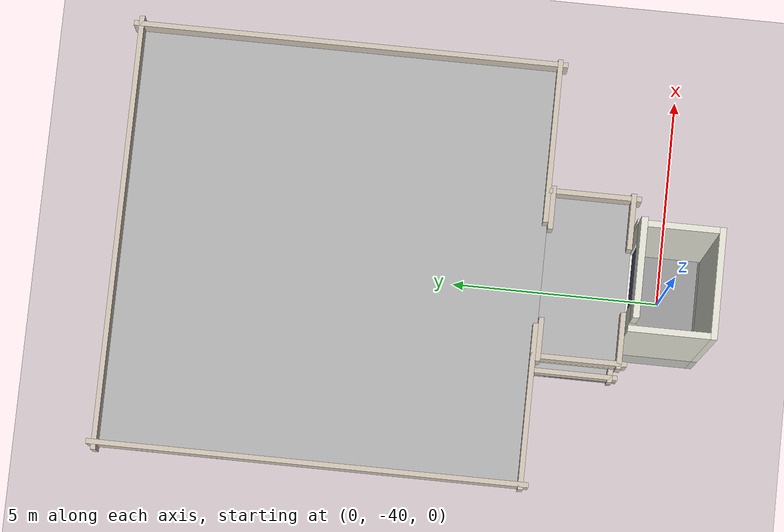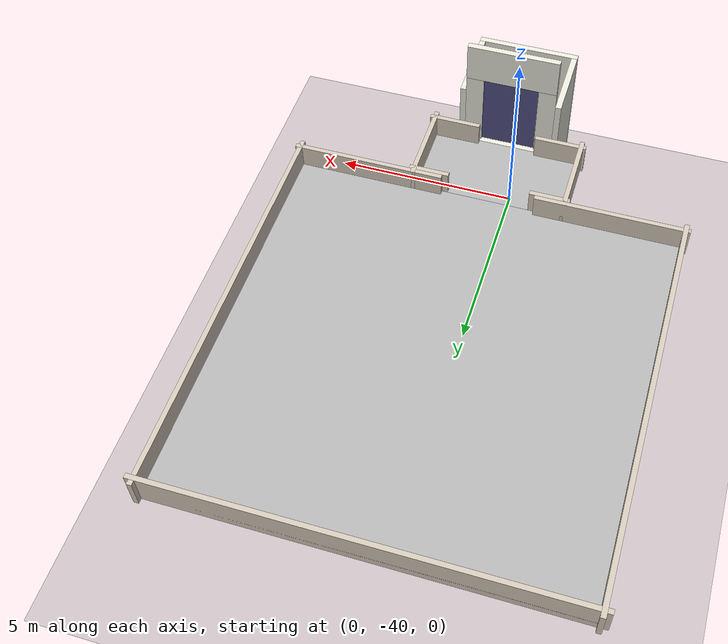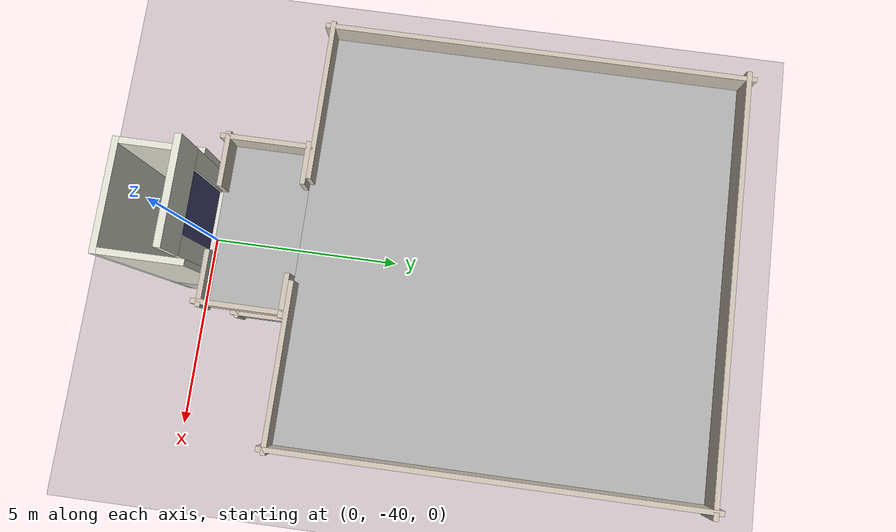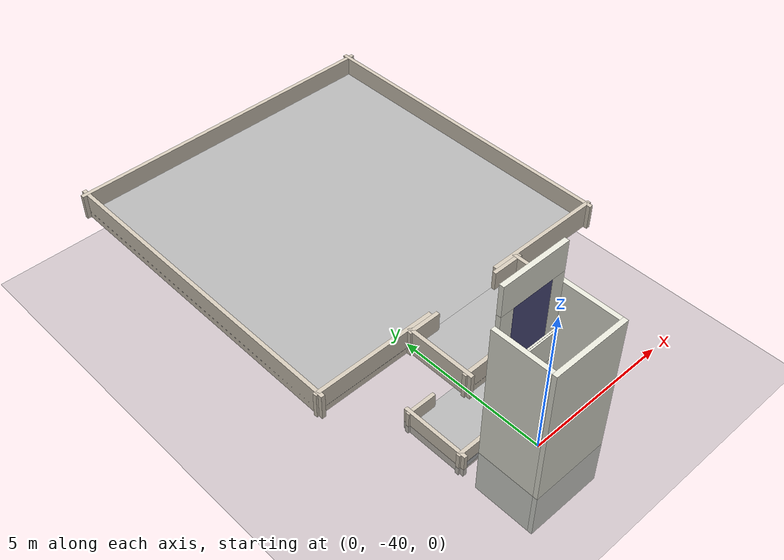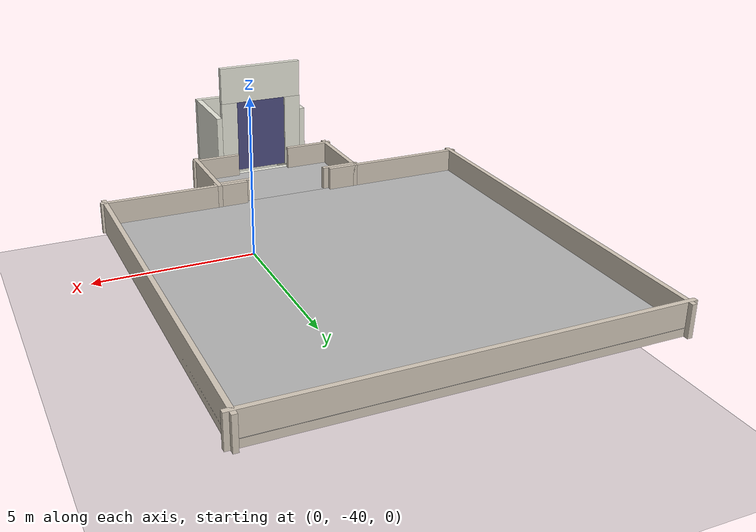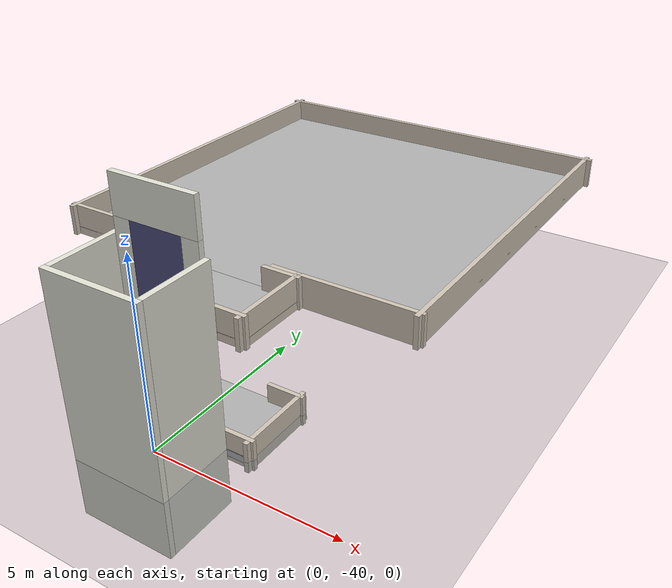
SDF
<sdf version="1.10">
 <world name="world_demo">
  <model name="elevator">
   <pose>0 -40 0 0 0 1.5699999999999998</pose>
   <link name="structure">
    <kinematic>true</kinematic>
    <inertial>
     <mass>500</mass>
     <inertia><ixx>5000</ixx><iyy>5000</iyy><izz>500</izz><ixy>0</ixy><ixz>0</ixz><iyz>0</iyz></inertia>
    </inertial>
    <visual name="rear_wall_v">
     <pose>-1.0249999999999999 0 1.6000000000000001 0 0 0</pose>
     <geometry><box><size>0.14999999999999999 2.6000000000000001 6.4000000000000004</size></box></geometry>
     <material>
      <ambient>0.899999976 0.899999976 0.850000024 1</ambient>
      <diffuse>0.899999976 0.899999976 0.850000024 1</diffuse>
     </material>
    </visual>
    <collision name="rear_wall_c">
     <pose>-1.0249999999999999 0 1.6000000000000001 0 0 0</pose>
     <geometry><box><size>0.14999999999999999 2.6000000000000001 6.4000000000000004</size></box></geometry>
    </collision>
    <visual name="right_wall_v">
     <pose>0 -1.2250000000000001 1.6000000000000001 0 0 0</pose>
     <geometry><box><size>1.8999999999999999 0.14999999999999999 6.4000000000000004</size></box></geometry>
     <material>
      <ambient>0.899999976 0.899999976 0.850000024 1</ambient>
      <diffuse>0.899999976 0.899999976 0.850000024 1</diffuse>
     </material>
    </visual>
    <collision name="right_wall_c">
     <pose>0 -1.2250000000000001 1.6000000000000001 0 0 0</pose>
     <geometry><box><size>1.8999999999999999 0.14999999999999999 6.4000000000000004</size></box></geometry>
    </collision>
    <visual name="left_wall_v">
     <pose>0 1.2250000000000001 1.6000000000000001 0 0 0</pose>
     <geometry><box><size>1.8999999999999999 0.14999999999999999 6.4000000000000004</size></box></geometry>
     <material>
      <ambient>0.899999976 0.899999976 0.850000024 1</ambient>
      <diffuse>0.899999976 0.899999976 0.850000024 1</diffuse>
     </material>
    </visual>
    <collision name="left_wall_c">
     <pose>0 1.2250000000000001 1.6000000000000001 0 0 0</pose>
     <geometry><box><size>1.8999999999999999 0.14999999999999999 6.4000000000000004</size></box></geometry>
    </collision>
    <visual name="front_top_0_v">
     <pose>0.875 0 2.5 0 0 0</pose>
     <geometry><box><size>0.14999999999999999 2.2999999999999998 1</size></box></geometry>
     <material>
      <ambient>0.899999976 0.899999976 0.850000024 1</ambient>
      <diffuse>0.899999976 0.899999976 0.850000024 1</diffuse>
     </material>
    </visual>
    <collision name="front_top_0_c">
     <pose>0.875 0 2.5 0 0 0</pose>
     <geometry><box><size>0.14999999999999999 2.2999999999999998 1</size></box></geometry>
    </collision>
    <visual name="front_right_0_v">
     <pose>0.875 -0.92500000000000004 1 0 0 0</pose>
     <geometry><box><size>0.14999999999999999 0.45000000000000001 2</size></box></geometry>
     <material>
      <ambient>0.899999976 0.899999976 0.850000024 1</ambient>
      <diffuse>0.899999976 0.899999976 0.850000024 1</diffuse>
     </material>
    </visual>
    <collision name="front_right_0_c">
     <pose>0.875 -0.92500000000000004 1 0 0 0</pose>
     <geometry><box><size>0.14999999999999999 0.45000000000000001 2</size></box></geometry>
    </collision>
    <visual name="front_left_0_v">
     <pose>0.875 0.92500000000000004 1 0 0 0</pose>
     <geometry><box><size>0.14999999999999999 0.45000000000000001 2</size></box></geometry>
     <material>
      <ambient>0.899999976 0.899999976 0.850000024 1</ambient>
      <diffuse>0.899999976 0.899999976 0.850000024 1</diffuse>
     </material>
    </visual>
    <collision name="front_left_0_c">
     <pose>0.875 0.92500000000000004 1 0 0 0</pose>
     <geometry><box><size>0.14999999999999999 0.45000000000000001 2</size></box></geometry>
    </collision>
    <visual name="front_bottom_0_v">
     <pose>0.875 0 -0.01 0 0 0</pose>
     <geometry><box><size>0.14999999999999999 2.2999999999999998 0.01</size></box></geometry>
     <material>
      <ambient>0.899999976 0.899999976 0.850000024 1</ambient>
      <diffuse>0.899999976 0.899999976 0.850000024 1</diffuse>
     </material>
    </visual>
    <collision name="front_bottom_0_c">
     <pose>0.875 0 -0.01 0 0 0</pose>
     <geometry><box><size>0.14999999999999999 2.2999999999999998 0.01</size></box></geometry>
    </collision>
    <visual name="front_top_1_v">
     <pose>0.875 0 5.7000000000000002 0 0 0</pose>
     <geometry><box><size>0.14999999999999999 2.2999999999999998 1</size></box></geometry>
     <material>
      <ambient>0.899999976 0.899999976 0.850000024 1</ambient>
      <diffuse>0.899999976 0.899999976 0.850000024 1</diffuse>
     </material>
    </visual>
    <collision name="front_top_1_c">
     <pose>0.875 0 5.7000000000000002 0 0 0</pose>
     <geometry><box><size>0.14999999999999999 2.2999999999999998 1</size></box></geometry>
    </collision>
    <visual name="front_right_1_v">
     <pose>0.875 -0.92500000000000004 4.2000000000000002 0 0 0</pose>
     <geometry><box><size>0.14999999999999999 0.45000000000000001 2</size></box></geometry>
     <material>
      <ambient>0.899999976 0.899999976 0.850000024 1</ambient>
      <diffuse>0.899999976 0.899999976 0.850000024 1</diffuse>
     </material>
    </visual>
    <collision name="front_right_1_c">
     <pose>0.875 -0.92500000000000004 4.2000000000000002 0 0 0</pose>
     <geometry><box><size>0.14999999999999999 0.45000000000000001 2</size></box></geometry>
    </collision>
    <visual name="front_left_1_v">
     <pose>0.875 0.92500000000000004 4.2000000000000002 0 0 0</pose>
     <geometry><box><size>0.14999999999999999 0.45000000000000001 2</size></box></geometry>
     <material>
      <ambient>0.899999976 0.899999976 0.850000024 1</ambient>
      <diffuse>0.899999976 0.899999976 0.850000024 1</diffuse>
     </material>
    </visual>
    <collision name="front_left_1_c">
     <pose>0.875 0.92500000000000004 4.2000000000000002 0 0 0</pose>
     <geometry><box><size>0.14999999999999999 0.45000000000000001 2</size></box></geometry>
    </collision>
    <visual name="front_bottom_1_v">
     <pose>0.875 0 3.1000000000000001 0 0 0</pose>
     <geometry><box><size>0.14999999999999999 2.2999999999999998 0.01</size></box></geometry>
     <material>
      <ambient>0.899999976 0.899999976 0.850000024 1</ambient>
      <diffuse>0.899999976 0.899999976 0.850000024 1</diffuse>
     </material>
    </visual>
    <collision name="front_bottom_1_c">
     <pose>0.875 0 3.1000000000000001 0 0 0</pose>
     <geometry><box><size>0.14999999999999999 2.2999999999999998 0.01</size></box></geometry>
    </collision>
    <visual name="entrance_0_v">
     <pose>1.95 0 -0.10000000000000001 0 0 0</pose>
     <geometry><box><size>2 4 0.20000000000000001</size></box></geometry>
     <material>
      <ambient>0.699999988 0.699999988 0.699999988 1</ambient>
      <diffuse>0.699999988 0.699999988 0.699999988 1</diffuse>
     </material>
    </visual>
    <collision name="entrance_0_c">
     <pose>1.95 0 -0.10000000000000001 0 0 0</pose>
     <geometry><box><size>2 4 0.20000000000000001</size></box></geometry>
    </collision>
    <visual name="entrance_1_v">
     <pose>1.95 0 3.1000000000000001 0 0 0</pose>
     <geometry><box><size>2 4 0.01</size></box></geometry>
     <material>
      <ambient>0.699999988 0.699999988 0.699999988 1</ambient>
      <diffuse>0.699999988 0.699999988 0.699999988 1</diffuse>
     </material>
    </visual>
    <collision name="entrance_1_c">
     <pose>1.95 0 3.1000000000000001 0 0 0</pose>
     <geometry><box><size>2 4 0.01</size></box></geometry>
    </collision>
   </link>
   <joint name="foundation" type="fixed"><parent>world</parent><child>structure</child></joint>
   <link name="door_panel_0">
    <pose>0.84999999999999432 7.1054273576010019e-15 1 0 0 3.3306690738754701e-16</pose>
    <inertial>
     <mass>20</mass>
     <inertia>
      <ixx>9.9299999999999997</ixx>
      <iyy>6.6799999999999997</iyy>
      <izz>3.2799999999999998</izz>
      <ixy>0</ixy>
      <ixz>0</ixz>
      <iyz>0</iyz>
     </inertia>
    </inertial>
    <visual name="visual">
     <geometry><box><size>0.10000000000000001 1.3999999999999999 2</size></box></geometry>
     <material>
      <ambient>0.300000012 0.300000012 0.5 1</ambient>
      <diffuse>0.300000012 0.300000012 0.5 1</diffuse>
     </material>
    </visual>
    <collision name="collision">
     <geometry><box><size>0.10000000000000001 1.3999999999999999 2</size></box></geometry>
    </collision>
   </link>
   <joint name="door_0" type="prismatic">
    <parent>structure</parent>
    <child>door_panel_0</child>
    <axis>
     <xyz>0 1 0</xyz>
     <limit>
      <lower>0</lower>
      <upper>1.3999999999999999</upper>
      <effort>5000</effort>
      <velocity>0.5</velocity>
      <stiffness>100000000</stiffness>
      <dissipation>1</dissipation>
     </limit>
     <dynamics>
      <spring_reference>0</spring_reference>
      <spring_stiffness>0</spring_stiffness>
      <damping>30</damping>
      <friction>0</friction>
     </dynamics>
    </axis>
   </joint>
   <plugin name="gz::sim::systems::JointPositionController" filename="gz-sim-joint-position-controller-system">
    <joint_name>door_0</joint_name>
    <p_gain>60</p_gain>
    <i_gain>0</i_gain>
    <d_gain>40</d_gain>
    <cmd_min>-20</cmd_min>
    <cmd_max>20</cmd_max>
   </plugin>
   <link name="door_panel_1">
    <pose>0.84999999999999432 7.1054273576010019e-15 4.1999999999999993 0 0 3.3306690738754701e-16</pose>
    <inertial>
     <mass>20</mass>
     <inertia>
      <ixx>9.9299999999999997</ixx>
      <iyy>6.6799999999999997</iyy>
      <izz>3.2799999999999998</izz>
      <ixy>0</ixy>
      <ixz>0</ixz>
      <iyz>0</iyz>
     </inertia>
    </inertial>
    <visual name="visual">
     <geometry><box><size>0.10000000000000001 1.3999999999999999 2</size></box></geometry>
     <material>
      <ambient>0.300000012 0.300000012 0.5 1</ambient>
      <diffuse>0.300000012 0.300000012 0.5 1</diffuse>
     </material>
    </visual>
    <collision name="collision">
     <geometry><box><size>0.10000000000000001 1.3999999999999999 2</size></box></geometry>
    </collision>
   </link>
   <joint name="door_1" type="prismatic">
    <parent>structure</parent>
    <child>door_panel_1</child>
    <axis>
     <xyz>0 1 0</xyz>
     <limit>
      <lower>0</lower>
      <upper>1.3999999999999999</upper>
      <effort>5000</effort>
      <velocity>0.5</velocity>
      <stiffness>100000000</stiffness>
      <dissipation>1</dissipation>
     </limit>
     <dynamics>
      <spring_reference>0</spring_reference>
      <spring_stiffness>0</spring_stiffness>
      <damping>30</damping>
      <friction>0</friction>
     </dynamics>
    </axis>
   </joint>
   <plugin name="gz::sim::systems::JointPositionController" filename="gz-sim-joint-position-controller-system">
    <joint_name>door_1</joint_name>
    <p_gain>60</p_gain>
    <i_gain>0</i_gain>
    <d_gain>40</d_gain>
    <cmd_min>-20</cmd_min>
    <cmd_max>20</cmd_max>
   </plugin>
   <link name="cabin">
    <pose>-0.049999999999997158 3.5527136788005009e-15 0.069999999999999993 0 0 3.3306690738754701e-16</pose>
    <inertial>
     <mass>400</mass>
     <inertia><ixx>300</ixx><iyy>300</iyy><izz>100</izz><ixy>0</ixy><ixz>0</ixz><iyz>0</iyz></inertia>
    </inertial>
    <visual name="floor_visual">
     <pose>0 0 -0.080000000000000002 0 0 0</pose>
     <geometry><box><size>1.7 2.2999999999999998 0.01</size></box></geometry>
     <material>
      <ambient>0.600000024 0.600000024 0.600000024 1</ambient>
      <diffuse>0.600000024 0.600000024 0.600000024 1</diffuse>
     </material>
    </visual>
    <collision name="floor_collision">
     <pose>0 0 -0.080000000000000002 0 0 0</pose>
     <geometry><box><size>1.7 2.2999999999999998 0.01</size></box></geometry>
    </collision>
   </link>
   <joint name="lift" type="prismatic">
    <parent>structure</parent>
    <child>cabin</child>
    <axis>
     <xyz>0 0 1</xyz>
     <limit>
      <lower>-0.033000000000000002</lower>
      <upper>3.1099999999999999</upper>
      <effort>50000000</effort>
      <velocity>0.5</velocity>
      <stiffness>100000000</stiffness>
      <dissipation>1</dissipation>
     </limit>
     <dynamics>
      <spring_reference>0</spring_reference>
      <spring_stiffness>0</spring_stiffness>
      <damping>180000</damping>
      <friction>0</friction>
     </dynamics>
    </axis>
   </joint>
   <plugin name="gz::sim::systems::JointPositionController" filename="gz-sim-joint-position-controller-system">
    <joint_name>lift</joint_name>
    <p_gain>4000000</p_gain>
    <i_gain>2000</i_gain>
    <d_gain>5000</d_gain>
    <i_min>-2000</i_min>
    <i_max>2000</i_max>
    <cmd_min>-80000</cmd_min>
    <cmd_max>120000</cmd_max>
   </plugin>
   <link name="floor_0">
    <pose>0 7.1054273576010019e-15 0 0 0 3.3306690738754701e-16</pose>
    <inertial>
     <mass>1</mass>
     <inertia><ixx>1</ixx><ixy>0</ixy><ixz>0</ixz><iyy>1</iyy><iyz>0</iyz><izz>1</izz></inertia>
    </inertial>
   </link>
   <joint name="floor_0_joint" type="fixed"><parent>structure</parent><child>floor_0</child></joint>
   <link name="floor_1">
    <pose>0 7.1054273576010019e-15 3.2000000000000002 0 0 3.3306690738754701e-16</pose>
    <inertial>
     <mass>1</mass>
     <inertia><ixx>1</ixx><ixy>0</ixy><ixz>0</ixz><iyy>1</iyy><iyz>0</iyz><izz>1</izz></inertia>
    </inertial>
   </link>
   <joint name="floor_1_joint" type="fixed"><parent>structure</parent><child>floor_1</child></joint>
   <link name="entrance_0_railings">
    <kinematic>true</kinematic>
    <pose>1.9500000000000028 3.5527136788005009e-15 -0.10000000000000001 0 0 3.3306690738754701e-16</pose>
    <inertial>
     <mass>1</mass>
     <inertia><ixx>1</ixx><iyy>1</iyy><izz>1</izz><ixy>0</ixy><ixz>0</ixz><iyz>0</iyz></inertia>
    </inertial>
    <visual name="e0_rail_px_low_v">
     <pose>0.93999999999999995 -1.55 0.20000000000000001 0 0 0</pose>
     <geometry><box><size>0.12 1.02 0.80000000000000004</size></box></geometry>
     <material>
      <ambient>0.819999993 0.779999971 0.720000029 1</ambient>
      <diffuse>0.819999993 0.779999971 0.720000029 1</diffuse>
     </material>
    </visual>
    <collision name="e0_rail_px_low_c">
     <pose>0.93999999999999995 -1.55 0.20000000000000001 0 0 0</pose>
     <geometry><box><size>0.12 1.02 0.80000000000000004</size></box></geometry>
    </collision>
    <visual name="e0_rail_px_high_v">
     <pose>0.93999999999999995 1.55 0.20000000000000001 0 0 0</pose>
     <geometry><box><size>0.12 1.02 0.80000000000000004</size></box></geometry>
     <material>
      <ambient>0.819999993 0.779999971 0.720000029 1</ambient>
      <diffuse>0.819999993 0.779999971 0.720000029 1</diffuse>
     </material>
    </visual>
    <collision name="e0_rail_px_high_c">
     <pose>0.93999999999999995 1.55 0.20000000000000001 0 0 0</pose>
     <geometry><box><size>0.12 1.02 0.80000000000000004</size></box></geometry>
    </collision>
    <visual name="e0_rail_nx_low_v">
     <pose>-0.93999999999999995 -1.3999999999999999 0.20000000000000001 0 0 0</pose>
     <geometry><box><size>0.12 1.3200000000000001 0.80000000000000004</size></box></geometry>
     <material>
      <ambient>0.819999993 0.779999971 0.720000029 1</ambient>
      <diffuse>0.819999993 0.779999971 0.720000029 1</diffuse>
     </material>
    </visual>
    <collision name="e0_rail_nx_low_c">
     <pose>-0.93999999999999995 -1.3999999999999999 0.20000000000000001 0 0 0</pose>
     <geometry><box><size>0.12 1.3200000000000001 0.80000000000000004</size></box></geometry>
    </collision>
    <visual name="e0_rail_nx_high_v">
     <pose>-0.93999999999999995 1.3999999999999999 0.20000000000000001 0 0 0</pose>
     <geometry><box><size>0.12 1.3200000000000001 0.80000000000000004</size></box></geometry>
     <material>
      <ambient>0.819999993 0.779999971 0.720000029 1</ambient>
      <diffuse>0.819999993 0.779999971 0.720000029 1</diffuse>
     </material>
    </visual>
    <collision name="e0_rail_nx_high_c">
     <pose>-0.93999999999999995 1.3999999999999999 0.20000000000000001 0 0 0</pose>
     <geometry><box><size>0.12 1.3200000000000001 0.80000000000000004</size></box></geometry>
    </collision>
    <visual name="e0_rail_py_v">
     <pose>0 1.9399999999999999 0.20000000000000001 0 0 0</pose>
     <geometry><box><size>2.2400000000000002 0.12 0.80000000000000004</size></box></geometry>
     <material>
      <ambient>0.819999993 0.779999971 0.720000029 1</ambient>
      <diffuse>0.819999993 0.779999971 0.720000029 1</diffuse>
     </material>
    </visual>
    <collision name="e0_rail_py_c">
     <pose>0 1.9399999999999999 0.20000000000000001 0 0 0</pose>
     <geometry><box><size>2.2400000000000002 0.12 0.80000000000000004</size></box></geometry>
    </collision>
    <visual name="e0_rail_ny_v">
     <pose>0 -1.9399999999999999 0.20000000000000001 0 0 0</pose>
     <geometry><box><size>2.2400000000000002 0.12 0.80000000000000004</size></box></geometry>
     <material>
      <ambient>0.819999993 0.779999971 0.720000029 1</ambient>
      <diffuse>0.819999993 0.779999971 0.720000029 1</diffuse>
     </material>
    </visual>
    <collision name="e0_rail_ny_c">
     <pose>0 -1.9399999999999999 0.20000000000000001 0 0 0</pose>
     <geometry><box><size>2.2400000000000002 0.12 0.80000000000000004</size></box></geometry>
    </collision>
   </link>
   <joint name="entrance_0_railings_joint" type="fixed">
    <parent>structure</parent>
    <child>entrance_0_railings</child>
   </joint>
   <link name="entrance_1_railings">
    <kinematic>true</kinematic>
    <pose>1.9500000000000028 3.5527136788005009e-15 3.0999999999999996 0 0 3.3306690738754701e-16</pose>
    <inertial>
     <mass>1</mass>
     <inertia><ixx>1</ixx><iyy>1</iyy><izz>1</izz><ixy>0</ixy><ixz>0</ixz><iyz>0</iyz></inertia>
    </inertial>
    <visual name="e1_rail_px_low_v">
     <pose>0.93999999999999995 -1.55 0.20000000000000001 0 0 0</pose>
     <geometry><box><size>0.12 1.02 0.80000000000000004</size></box></geometry>
     <material>
      <ambient>0.819999993 0.779999971 0.720000029 1</ambient>
      <diffuse>0.819999993 0.779999971 0.720000029 1</diffuse>
     </material>
    </visual>
    <collision name="e1_rail_px_low_c">
     <pose>0.93999999999999995 -1.55 0.20000000000000001 0 0 0</pose>
     <geometry><box><size>0.12 1.02 0.80000000000000004</size></box></geometry>
    </collision>
    <visual name="e1_rail_px_high_v">
     <pose>0.93999999999999995 1.55 0.20000000000000001 0 0 0</pose>
     <geometry><box><size>0.12 1.02 0.80000000000000004</size></box></geometry>
     <material>
      <ambient>0.819999993 0.779999971 0.720000029 1</ambient>
      <diffuse>0.819999993 0.779999971 0.720000029 1</diffuse>
     </material>
    </visual>
    <collision name="e1_rail_px_high_c">
     <pose>0.93999999999999995 1.55 0.20000000000000001 0 0 0</pose>
     <geometry><box><size>0.12 1.02 0.80000000000000004</size></box></geometry>
    </collision>
    <visual name="e1_rail_nx_low_v">
     <pose>-0.93999999999999995 -1.3999999999999999 0.20000000000000001 0 0 0</pose>
     <geometry><box><size>0.12 1.3200000000000001 0.80000000000000004</size></box></geometry>
     <material>
      <ambient>0.819999993 0.779999971 0.720000029 1</ambient>
      <diffuse>0.819999993 0.779999971 0.720000029 1</diffuse>
     </material>
    </visual>
    <collision name="e1_rail_nx_low_c">
     <pose>-0.93999999999999995 -1.3999999999999999 0.20000000000000001 0 0 0</pose>
     <geometry><box><size>0.12 1.3200000000000001 0.80000000000000004</size></box></geometry>
    </collision>
    <visual name="e1_rail_nx_high_v">
     <pose>-0.93999999999999995 1.3999999999999999 0.20000000000000001 0 0 0</pose>
     <geometry><box><size>0.12 1.3200000000000001 0.80000000000000004</size></box></geometry>
     <material>
      <ambient>0.819999993 0.779999971 0.720000029 1</ambient>
      <diffuse>0.819999993 0.779999971 0.720000029 1</diffuse>
     </material>
    </visual>
    <collision name="e1_rail_nx_high_c">
     <pose>-0.93999999999999995 1.3999999999999999 0.20000000000000001 0 0 0</pose>
     <geometry><box><size>0.12 1.3200000000000001 0.80000000000000004</size></box></geometry>
    </collision>
    <visual name="e1_rail_py_v">
     <pose>0 1.9399999999999999 0.20000000000000001 0 0 0</pose>
     <geometry><box><size>2.2400000000000002 0.12 0.80000000000000004</size></box></geometry>
     <material>
      <ambient>0.819999993 0.779999971 0.720000029 1</ambient>
      <diffuse>0.819999993 0.779999971 0.720000029 1</diffuse>
     </material>
    </visual>
    <collision name="e1_rail_py_c">
     <pose>0 1.9399999999999999 0.20000000000000001 0 0 0</pose>
     <geometry><box><size>2.2400000000000002 0.12 0.80000000000000004</size></box></geometry>
    </collision>
    <visual name="e1_rail_ny_v">
     <pose>0 -1.9399999999999999 0.20000000000000001 0 0 0</pose>
     <geometry><box><size>2.2400000000000002 0.12 0.80000000000000004</size></box></geometry>
     <material>
      <ambient>0.819999993 0.779999971 0.720000029 1</ambient>
      <diffuse>0.819999993 0.779999971 0.720000029 1</diffuse>
     </material>
    </visual>
    <collision name="e1_rail_ny_c">
     <pose>0 -1.9399999999999999 0.20000000000000001 0 0 0</pose>
     <geometry><box><size>2.2400000000000002 0.12 0.80000000000000004</size></box></geometry>
    </collision>
   </link>
   <joint name="entrance_1_railings_joint" type="fixed">
    <parent>structure</parent>
    <child>entrance_1_railings</child>
   </joint>
   <link name="floor2_deck_extension">
    <kinematic>true</kinematic>
    <pose>7.9500000000000099 7.1054273576010019e-15 3.0999999999999996 0 0 3.3306690738754701e-16</pose>
    <inertial>
     <mass>1</mass>
     <inertia><ixx>1</ixx><iyy>1</iyy><izz>1</izz><ixy>0</ixy><ixz>0</ixz><iyz>0</iyz></inertia>
    </inertial>
    <visual name="deck_v">
     <geometry><box><size>10 10 0.01</size></box></geometry>
     <material>
      <ambient>0.699999988 0.699999988 0.699999988 1</ambient>
      <diffuse>0.699999988 0.699999988 0.699999988 1</diffuse>
     </material>
    </visual>
    <collision name="deck_c"><geometry><box><size>10 10 0.01</size></box></geometry></collision>
    <visual name="rail_px_v">
     <pose>4.9400000000000004 0 0.20000000000000001 0 0 0</pose>
     <geometry><box><size>0.12 10.24 0.80000000000000004</size></box></geometry>
     <material>
      <ambient>0.819999993 0.779999971 0.720000029 1</ambient>
      <diffuse>0.819999993 0.779999971 0.720000029 1</diffuse>
     </material>
    </visual>
    <collision name="rail_px_c">
     <pose>4.9400000000000004 0 0.20000000000000001 0 0 0</pose>
     <geometry><box><size>0.12 10.24 0.80000000000000004</size></box></geometry>
    </collision>
    <visual name="rail_py_v">
     <pose>0 4.9400000000000004 0.20000000000000001 0 0 0</pose>
     <geometry><box><size>10.24 0.12 0.80000000000000004</size></box></geometry>
     <material>
      <ambient>0.819999993 0.779999971 0.720000029 1</ambient>
      <diffuse>0.819999993 0.779999971 0.720000029 1</diffuse>
     </material>
    </visual>
    <collision name="rail_py_c">
     <pose>0 4.9400000000000004 0.20000000000000001 0 0 0</pose>
     <geometry><box><size>10.24 0.12 0.80000000000000004</size></box></geometry>
    </collision>
    <visual name="rail_ny_v">
     <pose>0 -4.9400000000000004 0.20000000000000001 0 0 0</pose>
     <geometry><box><size>10.24 0.12 0.80000000000000004</size></box></geometry>
     <material>
      <ambient>0.819999993 0.779999971 0.720000029 1</ambient>
      <diffuse>0.819999993 0.779999971 0.720000029 1</diffuse>
     </material>
    </visual>
    <collision name="rail_ny_c">
     <pose>0 -4.9400000000000004 0.20000000000000001 0 0 0</pose>
     <geometry><box><size>10.24 0.12 0.80000000000000004</size></box></geometry>
    </collision>
    <visual name="rail_nx_low_v">
     <pose>-4.9400000000000004 -3.125 0.20000000000000001 0 0 0</pose>
     <geometry><box><size>0.12 3.8700000000000001 0.80000000000000004</size></box></geometry>
     <material>
      <ambient>0.819999993 0.779999971 0.720000029 1</ambient>
      <diffuse>0.819999993 0.779999971 0.720000029 1</diffuse>
     </material>
    </visual>
    <collision name="rail_nx_low_c">
     <pose>-4.9400000000000004 -3.125 0.20000000000000001 0 0 0</pose>
     <geometry><box><size>0.12 3.8700000000000001 0.80000000000000004</size></box></geometry>
    </collision>
    <visual name="rail_nx_high_v">
     <pose>-4.9400000000000004 3.125 0.20000000000000001 0 0 0</pose>
     <geometry><box><size>0.12 3.8700000000000001 0.80000000000000004</size></box></geometry>
     <material>
      <ambient>0.819999993 0.779999971 0.720000029 1</ambient>
      <diffuse>0.819999993 0.779999971 0.720000029 1</diffuse>
     </material>
    </visual>
    <collision name="rail_nx_high_c">
     <pose>-4.9400000000000004 3.125 0.20000000000000001 0 0 0</pose>
     <geometry><box><size>0.12 3.8700000000000001 0.80000000000000004</size></box></geometry>
    </collision>
   </link>
   <joint name="floor2_deck_extension_joint" type="fixed">
    <parent>structure</parent>
    <child>floor2_deck_extension</child>
   </joint>
   <static>false</static>
  </model>
  <model name="ground_plane">
   <static>true</static>
   <link name="link">
    <collision name="collision">
     <geometry><plane><normal>0 0 1</normal><size>0.10000000000000001 0.10000000000000001</size></plane></geometry>
     <surface><friction><ode><mu>1.5</mu><mu2>1.5</mu2></ode></friction></surface>
    </collision>
    <visual name="ground_visual">
     <geometry><plane><normal>0 0 1</normal><size>500 500</size></plane></geometry>
     <material>
      <ambient>0.449999988 0.460000008 0.479999989 1</ambient>
      <diffuse>0.449999988 0.460000008 0.479999989 1</diffuse>
      <specular>0.100000001 0.100000001 0.100000001 1</specular>
     </material>
    </visual>
    <pose>0 0 -0.001 0 0 0</pose>
    <inertial>
     <mass>1</mass>
     <inertia><ixx>1</ixx><ixy>0</ixy><ixz>0</ixz><iyy>1</iyy><iyz>0</iyz><izz>1</izz></inertia>
    </inertial>
   </link>
  </model>
 </world>
</sdf>
